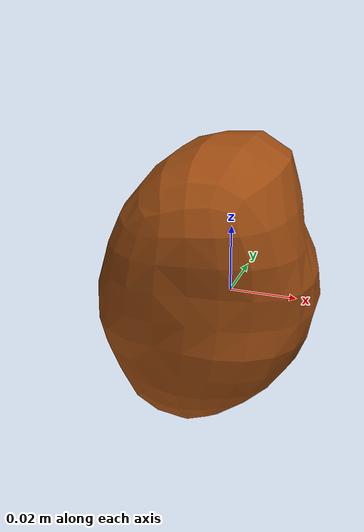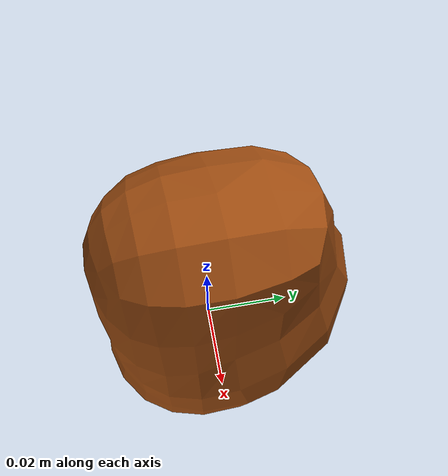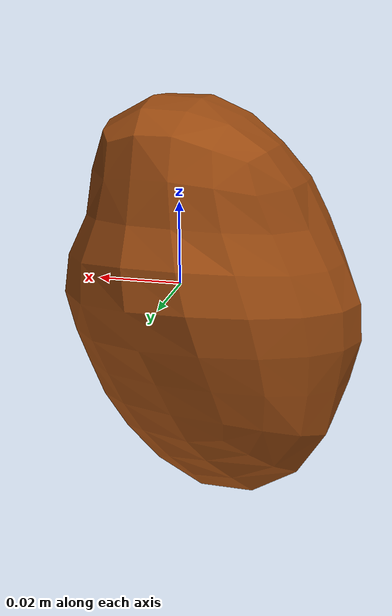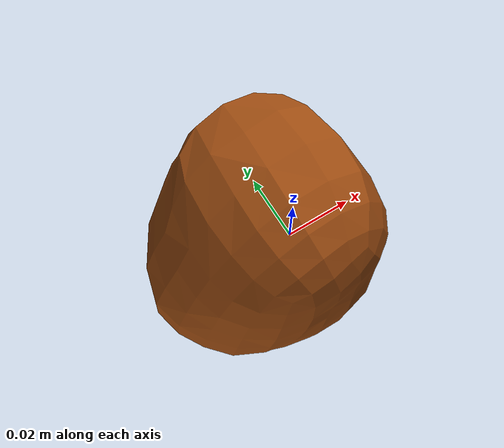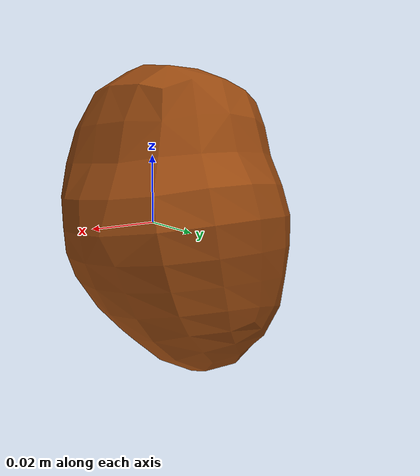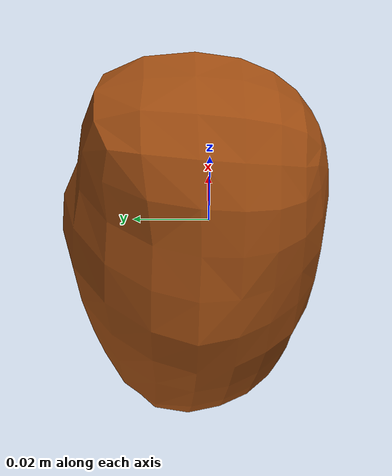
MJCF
<mujoco model="Potato_10">
  <compiler autolimits="true" boundmass="0.01" angle="radian"/>
  <default>
    <default class="/">
      <default class="__VISUAL_MJT__">
        <geom contype="0" conaffinity="0" group="0"/>
      </default>
      <default class="__STRUCTURAL_MJT__">
        <geom contype="8" conaffinity="15" group="4" friction="0.90000000000000002 0.90000000000000002 0.001" solref="0.025000000000000001 1" solimp="0.998 0.998 0.001"/>
      </default>
      <default class="__DYNAMIC_MJT__">
        <geom contype="1" conaffinity="15" group="4" friction="0.90000000000000002 0.90000000000000002 0.001" solref="0.025000000000000001 1" solimp="0.998 0.998 0.001"/>
      </default>
    </default>
  </default>
  <asset>
    <texture name="Potato1_Mat5" type="2d" file="Potato1_AlbedoTransparency.png"/>
    <material name="material_Potato1_Mat5" class="/" texture="Potato1_Mat5" specular="0.5" shininess="0.5" rgba="0.82352939999999997 0.41259990000000002 0.096885810000000003 1"/>
    <mesh name="Potato_10_potato_a10" class="/" file="Potato_10_potato_a10/Potato_10_potato_a10.obj" scale="1 1 1"/>
  </asset>
  <worldbody>
    <body name="Potato_10">
      <joint name="Potato_10_free" class="/" type="free" pos="0 0 0" axis="0 0 1" stiffness="0" range="0 0" armature="0" damping="0.10000000000000001" frictionloss="0"/>
      <body name="Potato_10_potato_a10" pos="-0.0041099999999999999 -0.00114 0.00062" quat="1 0 0 0">
        <geom name="Potato_10_potato_a10" class="__VISUAL_MJT__" type="mesh" material="material_Potato1_Mat5" shellinertia="true" mesh="Potato_10_potato_a10"/>
        <geom name="Potato_10_PrimitiveCollider_0" class="__DYNAMIC_MJT__" type="capsule" size="0.033585548400878906 0.014181584119796753" rgba="0 1 0 1" pos="-0.0041137561202049255 0.001141188433393836 -0.00062025885563343763" quat="1.4751396609986736e-06 0.99999999999891198 0 0"/>
      </body>
    </body>
  </worldbody>
</mujoco>
